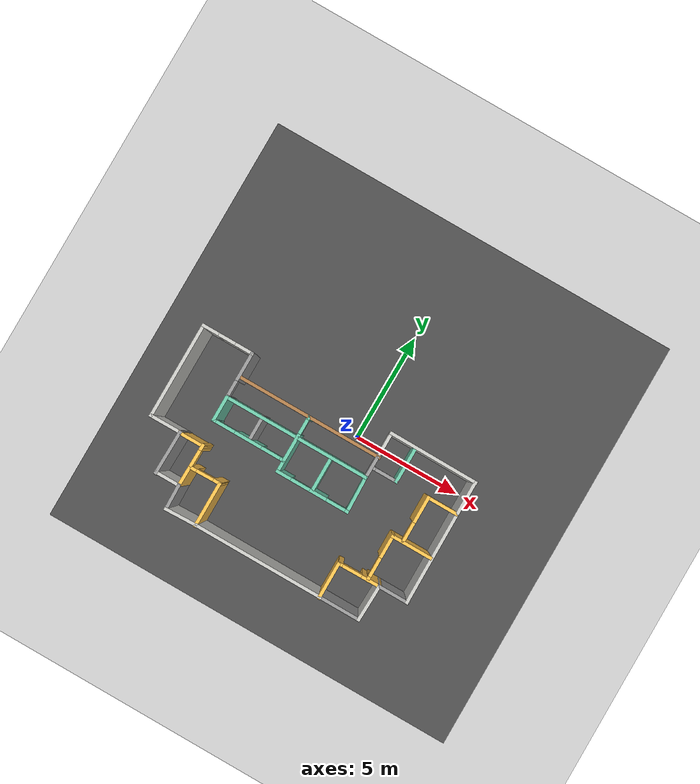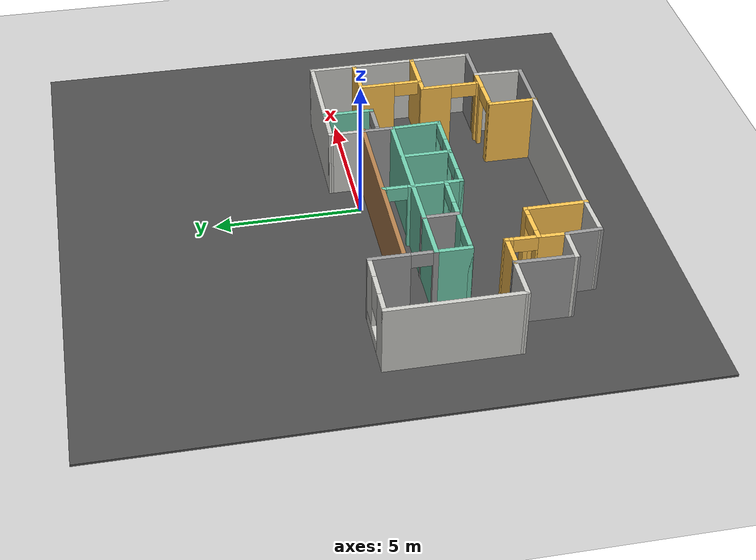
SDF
<sdf version="1.6">
 <world name="default">
  <model name="ground_plane">
   <static>1</static>
   <link name="link">
    <collision name="collision">
     <geometry><plane><normal>0 0 1</normal><size>100 100</size></plane></geometry>
     <surface>
      <contact><collide_bitmask>65535</collide_bitmask></contact>
      <friction><ode><mu>100</mu><mu2>50</mu2></ode></friction>
     </surface>
    </collision>
    <visual name="visual">
     <cast_shadows>0</cast_shadows>
     <geometry><plane><normal>0 0 1</normal><size>100 100</size></plane></geometry>
     <material>
      <script><uri>file://media/materials/scripts/gazebo.material</uri><name>Gazebo/Grey</name></script>
     </material>
    </visual>
   </link>
  </model>
  <model name="building">
   <pose>-1.31872 -2.90365 0 0 -0 0</pose>
   <link name="Wall_14">
    <collision name="Wall_14_Collision">
     <geometry><box><size>6.75 0.15 2.5</size></box></geometry>
     <pose>0 0 1.25 0 -0 0</pose>
    </collision>
    <visual name="Wall_14_Visual">
     <pose>0 0 1.25 0 -0 0</pose>
     <geometry><box><size>6.75 0.15 2.5</size></box></geometry>
     <material>
      <script><uri>file://media/materials/scripts/gazebo.material</uri><name>Gazebo/Wood</name></script>
      <ambient>1 1 1 1</ambient>
     </material>
     <meta><layer>0</layer></meta>
    </visual>
    <pose>-0.771279 2.58365 0 0 -0 3.14159</pose>
   </link>
   <link name="Wall_31">
    <collision name="Wall_31_Collision">
     <geometry><box><size>1.25 0.15 2.5</size></box></geometry>
     <pose>0 0 1.25 0 -0 0</pose>
    </collision>
    <visual name="Wall_31_Visual">
     <pose>0 0 1.25 0 -0 0</pose>
     <geometry><box><size>1.25 0.15 2.5</size></box></geometry>
     <material>
      <script><uri>file://media/materials/scripts/gazebo.material</uri><name>Gazebo/Grey</name></script>
      <ambient>1 0.764706 0.305882 1</ambient>
     </material>
     <meta><layer>0</layer></meta>
    </visual>
    <pose>-4.61808 -0.688752 0 0 -0 0</pose>
   </link>
   <link name="Wall_32">
    <pose>-4.08498 -1.64215 0 0 0 -1.58804</pose>
    <visual name="Wall_32_Visual_0">
     <pose>-0.900343 0 1.25 0 -0 0</pose>
     <geometry><box><size>0.309609 0.15 2.5</size></box></geometry>
     <material>
      <script><uri>file://media/materials/scripts/gazebo.material</uri><name>Gazebo/Grey</name></script>
      <ambient>1 0.764706 0.305882 1</ambient>
     </material>
     <meta><layer>0</layer></meta>
    </visual>
    <collision name="Wall_32_Collision_0">
     <geometry><box><size>0.309609 0.15 2.5</size></box></geometry>
     <pose>-0.900343 0 1.25 0 -0 0</pose>
    </collision>
    <visual name="Wall_32_Visual_1">
     <pose>0.554805 0 1.25 0 -0 0</pose>
     <geometry><box><size>1.00069 0.15 2.5</size></box></geometry>
     <material>
      <script><uri>file://media/materials/scripts/gazebo.material</uri><name>Gazebo/Grey</name></script>
      <ambient>1 0.764706 0.305882 1</ambient>
     </material>
     <meta><layer>0</layer></meta>
    </visual>
    <collision name="Wall_32_Collision_1">
     <geometry><box><size>1.00069 0.15 2.5</size></box></geometry>
     <pose>0.554805 0 1.25 0 -0 0</pose>
    </collision>
    <visual name="Wall_32_Visual_2">
     <pose>-0.345538 0 2.25 0 -0 0</pose>
     <geometry><box><size>0.8 0.15 0.5</size></box></geometry>
     <material>
      <script><uri>file://media/materials/scripts/gazebo.material</uri><name>Gazebo/Grey</name></script>
      <ambient>1 0.764706 0.305882 1</ambient>
     </material>
     <meta><layer>0</layer></meta>
    </visual>
    <collision name="Wall_32_Collision_2">
     <geometry><box><size>0.8 0.15 0.5</size></box></geometry>
     <pose>-0.345538 0 2.25 0 -0 0</pose>
    </collision>
   </link>
   <link name="Wall_34">
    <pose>-3.36907 -1.69258 0 0 -0 0.018781</pose>
    <visual name="Wall_34_Visual_0">
     <pose>-0.59641 0 1.25 0 -0 0</pose>
     <geometry><box><size>0.366972 0.15 2.5</size></box></geometry>
     <material>
      <script><uri>file://media/materials/scripts/gazebo.material</uri><name>Gazebo/Grey</name></script>
      <ambient>1 0.764706 0.305882 1</ambient>
     </material>
     <meta><layer>0</layer></meta>
    </visual>
    <collision name="Wall_34_Collision_0">
     <geometry><box><size>0.366972 0.15 2.5</size></box></geometry>
     <pose>-0.59641 0 1.25 0 -0 0</pose>
    </collision>
    <visual name="Wall_34_Visual_1">
     <pose>0.583486 0 1.25 0 -0 0</pose>
     <geometry><box><size>0.39282 0.15 2.5</size></box></geometry>
     <material>
      <script><uri>file://media/materials/scripts/gazebo.material</uri><name>Gazebo/Grey</name></script>
      <ambient>1 0.764706 0.305882 1</ambient>
     </material>
     <meta><layer>0</layer></meta>
    </visual>
    <collision name="Wall_34_Collision_1">
     <geometry><box><size>0.39282 0.15 2.5</size></box></geometry>
     <pose>0.583486 0 1.25 0 -0 0</pose>
    </collision>
    <visual name="Wall_34_Visual_2">
     <pose>-0.012924 0 2.25 0 -0 0</pose>
     <geometry><box><size>0.8 0.15 0.5</size></box></geometry>
     <material>
      <script><uri>file://media/materials/scripts/gazebo.material</uri><name>Gazebo/Grey</name></script>
      <ambient>1 0.764706 0.305882 1</ambient>
     </material>
     <meta><layer>0</layer></meta>
    </visual>
    <collision name="Wall_34_Collision_2">
     <geometry><box><size>0.8 0.15 0.5</size></box></geometry>
     <pose>-0.012924 0 2.25 0 -0 0</pose>
    </collision>
   </link>
   <link name="Wall_36">
    <collision name="Wall_36_Collision">
     <geometry><box><size>2.13879 0.15 2.5</size></box></geometry>
     <pose>0 0 1.25 0 -0 0</pose>
    </collision>
    <visual name="Wall_36_Visual">
     <pose>0 0 1.25 0 -0 0</pose>
     <geometry><box><size>2.13879 0.15 2.5</size></box></geometry>
     <material>
      <script><uri>file://media/materials/scripts/gazebo.material</uri><name>Gazebo/Grey</name></script>
      <ambient>1 0.764706 0.305882 1</ambient>
     </material>
     <meta><layer>0</layer></meta>
    </visual>
    <pose>-2.66467 -2.70035 0 0 0 -1.5708</pose>
   </link>
   <link name="Wall_37">
    <collision name="Wall_37_Collision">
     <geometry><box><size>1.56095 0.15 2.5</size></box></geometry>
     <pose>0 0 1.25 0 -0 0</pose>
    </collision>
    <visual name="Wall_37_Visual">
     <pose>0 0 1.25 0 -0 0</pose>
     <geometry><box><size>1.56095 0.15 2.5</size></box></geometry>
     <material>
      <script><uri>file://media/materials/scripts/gazebo.material</uri><name>Gazebo/CeilingTiled</name></script>
      <ambient>1 1 1 1</ambient>
     </material>
     <meta><layer>0</layer></meta>
    </visual>
    <pose>-3.36998 -3.69245 0 0 0 -3.10715</pose>
   </link>
   <link name="Wall_38">
    <collision name="Wall_38_Collision">
     <geometry><box><size>1.24492 0.15 2.5</size></box></geometry>
     <pose>0 0 1.25 0 -0 0</pose>
    </collision>
    <visual name="Wall_38_Visual">
     <pose>0 0 1.25 0 -0 0</pose>
     <geometry><box><size>1.24492 0.15 2.5</size></box></geometry>
     <material>
      <script><uri>file://media/materials/scripts/gazebo.material</uri><name>Gazebo/Grey</name></script>
      <ambient>1 1 1 1</ambient>
     </material>
     <meta><layer>0</layer></meta>
    </visual>
    <pose>-4.08858 -3.16945 0 0 -0 1.59509</pose>
   </link>
   <link name="Wall_4">
    <collision name="Wall_4_Collision">
     <geometry><box><size>1.55321 0.15 2.5</size></box></geometry>
     <pose>0 0 1.25 0 -0 0</pose>
    </collision>
    <visual name="Wall_4_Visual">
     <pose>0 0 1.25 0 -0 0</pose>
     <geometry><box><size>1.55321 0.15 2.5</size></box></geometry>
     <material>
      <script><uri>file://media/materials/scripts/gazebo.material</uri><name>Gazebo/CeilingTiled</name></script>
      <ambient>1 1 1 1</ambient>
     </material>
     <meta><layer>0</layer></meta>
    </visual>
    <pose>-5.86968 -0.664749 0 0 -0 0.003702</pose>
   </link>
   <link name="Wall_40">
    <collision name="Wall_40_Collision">
     <geometry><box><size>6.13374 0.15 2.5</size></box></geometry>
     <pose>0 0 1.25 0 -0 0</pose>
    </collision>
    <visual name="Wall_40_Visual">
     <pose>0 0 1.25 0 -0 0</pose>
     <geometry><box><size>6.13374 0.15 2.5</size></box></geometry>
     <material>
      <script><uri>file://media/materials/scripts/gazebo.material</uri><name>Gazebo/CeilingTiled</name></script>
      <ambient>1 1 1 1</ambient>
     </material>
     <meta><layer>0</layer></meta>
    </visual>
    <pose>0.32693 -3.66815 0 0 -0 0</pose>
   </link>
   <link name="Wall_41">
    <collision name="Wall_41_Collision">
     <geometry><box><size>1.75 0.15 2.5</size></box></geometry>
     <pose>0 0 1.25 0 -0 0</pose>
    </collision>
    <visual name="Wall_41_Visual">
     <pose>0 0 1.25 0 -0 0</pose>
     <geometry><box><size>1.75 0.15 2.5</size></box></geometry>
     <material>
      <script><uri>file://media/materials/scripts/gazebo.material</uri><name>Gazebo/Grey</name></script>
      <ambient>1 0.764706 0.305882 1</ambient>
     </material>
     <meta><layer>0</layer></meta>
    </visual>
    <pose>3.29194 -2.89475 0 0 -0 1.5708</pose>
   </link>
   <link name="Wall_43">
    <pose>4.27005 -2.05718 0 0 -0 0.011525</pose>
    <visual name="Wall_43_Visual_0">
     <pose>-0.911062 0 1.25 0 -0 0</pose>
     <geometry><box><size>0.231024 0.15 2.5</size></box></geometry>
     <material>
      <script><uri>file://media/materials/scripts/gazebo.material</uri><name>Gazebo/Grey</name></script>
      <ambient>1 0.764706 0.305882 1</ambient>
     </material>
     <meta><layer>0</layer></meta>
    </visual>
    <collision name="Wall_43_Collision_0">
     <geometry><box><size>0.231024 0.15 2.5</size></box></geometry>
     <pose>-0.911062 0 1.25 0 -0 0</pose>
    </collision>
    <visual name="Wall_43_Visual_1">
     <pose>0.565512 0 1.25 0 -0 0</pose>
     <geometry><box><size>0.922123 0.15 2.5</size></box></geometry>
     <material>
      <script><uri>file://media/materials/scripts/gazebo.material</uri><name>Gazebo/Grey</name></script>
      <ambient>1 0.764706 0.305882 1</ambient>
     </material>
     <meta><layer>0</layer></meta>
    </visual>
    <collision name="Wall_43_Collision_1">
     <geometry><box><size>0.922123 0.15 2.5</size></box></geometry>
     <pose>0.565512 0 1.25 0 -0 0</pose>
    </collision>
    <visual name="Wall_43_Visual_2">
     <pose>-0.34555 0 2.25 0 -0 0</pose>
     <geometry><box><size>0.9 0.15 0.5</size></box></geometry>
     <material>
      <script><uri>file://media/materials/scripts/gazebo.material</uri><name>Gazebo/Grey</name></script>
      <ambient>1 0.764706 0.305882 1</ambient>
     </material>
     <meta><layer>0</layer></meta>
    </visual>
    <collision name="Wall_43_Collision_2">
     <geometry><box><size>0.9 0.15 0.5</size></box></geometry>
     <pose>-0.34555 0 2.25 0 -0 0</pose>
    </collision>
   </link>
   <link name="Wall_44">
    <collision name="Wall_44_Collision">
     <geometry><box><size>1.7728 0.15 2.5</size></box></geometry>
     <pose>0 0 1.25 0 -0 0</pose>
    </collision>
    <visual name="Wall_44_Visual">
     <pose>0 0 1.25 0 -0 0</pose>
     <geometry><box><size>1.7728 0.15 2.5</size></box></geometry>
     <material>
      <script><uri>file://media/materials/scripts/gazebo.material</uri><name>Gazebo/CeilingTiled</name></script>
      <ambient>1 1 1 1</ambient>
     </material>
     <meta><layer>0</layer></meta>
    </visual>
    <pose>5.19505 -2.85718 0 0 0 -1.60347</pose>
   </link>
   <link name="Wall_45">
    <collision name="Wall_45_Collision">
     <geometry><box><size>2 0.15 2.5</size></box></geometry>
     <pose>0 0 1.25 0 -0 0</pose>
    </collision>
    <visual name="Wall_45_Visual">
     <pose>0 0 1.25 0 -0 0</pose>
     <geometry><box><size>2 0.15 2.5</size></box></geometry>
     <material>
      <script><uri>file://media/materials/scripts/gazebo.material</uri><name>Gazebo/Grey</name></script>
      <ambient>1 1 1 1</ambient>
     </material>
     <meta><layer>0</layer></meta>
    </visual>
    <pose>4.24353 -3.66815 0 0 -0 3.14159</pose>
   </link>
   <link name="Wall_47">
    <collision name="Wall_47_Collision">
     <geometry><box><size>1.5 0.15 2.5</size></box></geometry>
     <pose>0 0 1.25 0 -0 0</pose>
    </collision>
    <visual name="Wall_47_Visual">
     <pose>0 0 1.25 0 -0 0</pose>
     <geometry><box><size>1.5 0.15 2.5</size></box></geometry>
     <material>
      <script><uri>file://media/materials/scripts/gazebo.material</uri><name>Gazebo/Grey</name></script>
      <ambient>1 1 1 1</ambient>
     </material>
     <meta><layer>0</layer></meta>
    </visual>
    <pose>5.89656 -2.04621 0 0 -0 0</pose>
   </link>
   <link name="Wall_49">
    <collision name="Wall_49_Collision">
     <geometry><box><size>5.88847 0.15 2.5</size></box></geometry>
     <pose>0 0 1.25 0 -0 0</pose>
    </collision>
    <visual name="Wall_49_Visual">
     <pose>0 0 1.25 0 -0 0</pose>
     <geometry><box><size>5.88847 0.15 2.5</size></box></geometry>
     <material>
      <script><uri>file://media/materials/scripts/gazebo.material</uri><name>Gazebo/CeilingTiled</name></script>
      <ambient>1 1 1 1</ambient>
     </material>
     <meta><layer>0</layer></meta>
    </visual>
    <pose>6.53166 0.822991 0 0 -0 1.57543</pose>
   </link>
   <link name="Wall_5">
    <collision name="Wall_5_Collision">
     <geometry><box><size>2.11029 0.15 2.5</size></box></geometry>
     <pose>0 0 1.25 0 -0 0</pose>
    </collision>
    <visual name="Wall_5_Visual">
     <pose>0 0 1.25 0 -0 0</pose>
     <geometry><box><size>2.11029 0.15 2.5</size></box></geometry>
     <material>
      <script><uri>file://media/materials/scripts/gazebo.material</uri><name>Gazebo/Grey</name></script>
      <ambient>1 1 1 1</ambient>
     </material>
     <meta><layer>0</layer></meta>
    </visual>
    <pose>-5.18498 -1.64215 0 0 0 -1.58804</pose>
   </link>
   <link name="Wall_50">
    <collision name="Wall_50_Collision">
     <geometry><box><size>4.2185 0.15 2.5</size></box></geometry>
     <pose>0 0 1.25 0 -0 0</pose>
    </collision>
    <visual name="Wall_50_Visual">
     <pose>0 0 1.25 0 -0 0</pose>
     <geometry><box><size>4.2185 0.15 2.5</size></box></geometry>
     <material>
      <script><uri>file://media/materials/scripts/gazebo.material</uri><name>Gazebo/CeilingTiled</name></script>
      <ambient>1 1 1 1</ambient>
     </material>
     <meta><layer>0</layer></meta>
    </visual>
    <pose>4.51075 3.70549 0 0 -0 3.13505</pose>
   </link>
   <link name="Wall_51">
    <collision name="Wall_51_Collision">
     <geometry><box><size>1.25 0.15 2.5</size></box></geometry>
     <pose>0 0 1.25 0 -0 0</pose>
    </collision>
    <visual name="Wall_51_Visual">
     <pose>0 0 1.25 0 -0 0</pose>
     <geometry><box><size>1.25 0.15 2.5</size></box></geometry>
     <material>
      <script><uri>file://media/materials/scripts/gazebo.material</uri><name>Gazebo/CeilingTiled</name></script>
      <ambient>1 1 1 1</ambient>
     </material>
     <meta><layer>0</layer></meta>
    </visual>
    <pose>2.47654 3.16879 0 0 0 -1.5708</pose>
   </link>
   <link name="Wall_53">
    <collision name="Wall_53_Collision">
     <geometry><box><size>4.5 0.15 2.5</size></box></geometry>
     <pose>0 0 1.25 0 -0 0</pose>
    </collision>
    <visual name="Wall_53_Visual">
     <pose>0 0 1.25 0 -0 0</pose>
     <geometry><box><size>4.5 0.15 2.5</size></box></geometry>
     <material>
      <script><uri>file://media/materials/scripts/gazebo.material</uri><name>Gazebo/CeilingTiled</name></script>
      <ambient>1 1 1 1</ambient>
     </material>
     <meta><layer>0</layer></meta>
    </visual>
    <pose>-6.57128 1.50765 0 0 -0 1.5708</pose>
   </link>
   <link name="Wall_54">
    <pose>-5.39628 3.68265 0 0 -0 0</pose>
    <visual name="Wall_54_Visual_0">
     <pose>-0.846065 0 1.25 0 -0 0</pose>
     <geometry><box><size>0.807871 0.15 2.5</size></box></geometry>
     <material>
      <script><uri>file://media/materials/scripts/gazebo.material</uri><name>Gazebo/CeilingTiled</name></script>
      <ambient>1 1 1 1</ambient>
     </material>
     <meta><layer>0</layer></meta>
    </visual>
    <collision name="Wall_54_Collision_0">
     <geometry><box><size>0.807871 0.15 2.5</size></box></geometry>
     <pose>-0.846065 0 1.25 0 -0 0</pose>
    </collision>
    <visual name="Wall_54_Visual_1">
     <pose>0.403935 0 0.25 0 -0 0</pose>
     <geometry><box><size>1.69213 0.15 0.5</size></box></geometry>
     <material>
      <script><uri>file://media/materials/scripts/gazebo.material</uri><name>Gazebo/CeilingTiled</name></script>
      <ambient>1 1 1 1</ambient>
     </material>
     <meta><layer>0</layer></meta>
    </visual>
    <collision name="Wall_54_Collision_1">
     <geometry><box><size>1.69213 0.15 0.5</size></box></geometry>
     <pose>0.403935 0 0.25 0 -0 0</pose>
    </collision>
    <visual name="Wall_54_Visual_2">
     <pose>0.803935 0 1.5 0 -0 0</pose>
     <geometry><box><size>0.892129 0.15 2</size></box></geometry>
     <material>
      <script><uri>file://media/materials/scripts/gazebo.material</uri><name>Gazebo/CeilingTiled</name></script>
      <ambient>1 1 1 1</ambient>
     </material>
     <meta><layer>0</layer></meta>
    </visual>
    <collision name="Wall_54_Collision_2">
     <geometry><box><size>0.892129 0.15 2</size></box></geometry>
     <pose>0.803935 0 1.5 0 -0 0</pose>
    </collision>
    <visual name="Wall_54_Visual_3">
     <pose>-0.042129 0 1.9 0 -0 0</pose>
     <geometry><box><size>0.8 0.15 1.2</size></box></geometry>
     <material>
      <script><uri>file://media/materials/scripts/gazebo.material</uri><name>Gazebo/CeilingTiled</name></script>
      <ambient>1 1 1 1</ambient>
     </material>
     <meta><layer>0</layer></meta>
    </visual>
    <collision name="Wall_54_Collision_3">
     <geometry><box><size>0.8 0.15 1.2</size></box></geometry>
     <pose>-0.042129 0 1.9 0 -0 0</pose>
    </collision>
   </link>
   <link name="Wall_56">
    <pose>-4.22128 2.63265 0 0 0 -1.5708</pose>
    <visual name="Wall_56_Visual_0">
     <pose>-0.437256 0 1.25 0 -0 0</pose>
     <geometry><box><size>1.37549 0.15 2.5</size></box></geometry>
     <material>
      <script><uri>file://media/materials/scripts/gazebo.material</uri><name>Gazebo/Grey</name></script>
      <ambient>1 1 1 1</ambient>
     </material>
     <meta><layer>0</layer></meta>
    </visual>
    <collision name="Wall_56_Collision_0">
     <geometry><box><size>1.37549 0.15 2.5</size></box></geometry>
     <pose>-0.437256 0 1.25 0 -0 0</pose>
    </collision>
    <visual name="Wall_56_Visual_1">
     <pose>1.03774 0 1.25 0 -0 0</pose>
     <geometry><box><size>0.174512 0.15 2.5</size></box></geometry>
     <material>
      <script><uri>file://media/materials/scripts/gazebo.material</uri><name>Gazebo/Grey</name></script>
      <ambient>1 1 1 1</ambient>
     </material>
     <meta><layer>0</layer></meta>
    </visual>
    <collision name="Wall_56_Collision_1">
     <geometry><box><size>0.174512 0.15 2.5</size></box></geometry>
     <pose>1.03774 0 1.25 0 -0 0</pose>
    </collision>
    <visual name="Wall_56_Visual_2">
     <pose>0.600488 0 2.25 0 -0 0</pose>
     <geometry><box><size>0.7 0.15 0.5</size></box></geometry>
     <material>
      <script><uri>file://media/materials/scripts/gazebo.material</uri><name>Gazebo/Grey</name></script>
      <ambient>1 1 1 1</ambient>
     </material>
     <meta><layer>0</layer></meta>
    </visual>
    <collision name="Wall_56_Collision_2">
     <geometry><box><size>0.7 0.15 0.5</size></box></geometry>
     <pose>0.600488 0 2.25 0 -0 0</pose>
    </collision>
   </link>
   <link name="Wall_57">
    <collision name="Wall_57_Collision">
     <geometry><box><size>6.84 0.15 2.5</size></box></geometry>
     <pose>0 0 1.25 0 -0 0</pose>
    </collision>
    <visual name="Wall_57_Visual">
     <pose>0 0 1.25 0 -0 0</pose>
     <geometry><box><size>6.84 0.15 2.5</size></box></geometry>
     <material>
      <script><uri>file://media/materials/scripts/gazebo.material</uri><name>Gazebo/Grey</name></script>
      <ambient>0.435294 0.796078 0.67451 1</ambient>
     </material>
     <meta><layer>0</layer></meta>
    </visual>
    <pose>-0.876279 1.58265 0 0 -0 0</pose>
   </link>
   <link name="Wall_58">
    <collision name="Wall_58_Collision">
     <geometry><box><size>1.18617 0.15 2.5</size></box></geometry>
     <pose>0 0 1.25 0 -0 0</pose>
    </collision>
    <visual name="Wall_58_Visual">
     <pose>0 0 1.25 0 -0 0</pose>
     <geometry><box><size>1.18617 0.15 2.5</size></box></geometry>
     <material>
      <script><uri>file://media/materials/scripts/gazebo.material</uri><name>Gazebo/Grey</name></script>
      <ambient>1 1 1 1</ambient>
     </material>
     <meta><layer>0</layer></meta>
    </visual>
    <pose>2.47263 2.10072 0 0 -0 1.56325</pose>
   </link>
   <link name="Wall_6">
    <collision name="Wall_6_Collision">
     <geometry><box><size>1.25 0.15 2.5</size></box></geometry>
     <pose>0 0 1.25 0 -0 0</pose>
    </collision>
    <visual name="Wall_6_Visual">
     <pose>0 0 1.25 0 -0 0</pose>
     <geometry><box><size>1.25 0.15 2.5</size></box></geometry>
     <material>
      <script><uri>file://media/materials/scripts/gazebo.material</uri><name>Gazebo/CeilingTiled</name></script>
      <ambient>1 1 1 1</ambient>
     </material>
     <meta><layer>0</layer></meta>
    </visual>
    <pose>-4.65188 -2.59556 0 0 -0 0</pose>
   </link>
   <link name="Wall_60">
    <pose>-0.836574 1.26417 0 0 0 -1.5708</pose>
    <visual name="Wall_60_Visual_0">
     <pose>-1.2864 0 1.25 0 -0 0</pose>
     <geometry><box><size>0.177203 0.15 2.5</size></box></geometry>
     <material>
      <script><uri>file://media/materials/scripts/gazebo.material</uri><name>Gazebo/Grey</name></script>
      <ambient>0.435294 0.796078 0.67451 1</ambient>
     </material>
     <meta><layer>0</layer></meta>
    </visual>
    <collision name="Wall_60_Collision_0">
     <geometry><box><size>0.177203 0.15 2.5</size></box></geometry>
     <pose>-1.2864 0 1.25 0 -0 0</pose>
    </collision>
    <visual name="Wall_60_Visual_1">
     <pose>0.438602 0 1.25 0 -0 0</pose>
     <geometry><box><size>1.8728 0.15 2.5</size></box></geometry>
     <material>
      <script><uri>file://media/materials/scripts/gazebo.material</uri><name>Gazebo/Grey</name></script>
      <ambient>0.435294 0.796078 0.67451 1</ambient>
     </material>
     <meta><layer>0</layer></meta>
    </visual>
    <collision name="Wall_60_Collision_1">
     <geometry><box><size>1.8728 0.15 2.5</size></box></geometry>
     <pose>0.438602 0 1.25 0 -0 0</pose>
    </collision>
    <visual name="Wall_60_Visual_2">
     <pose>-0.847797 0 2.25 0 -0 0</pose>
     <geometry><box><size>0.7 0.15 0.5</size></box></geometry>
     <material>
      <script><uri>file://media/materials/scripts/gazebo.material</uri><name>Gazebo/Grey</name></script>
      <ambient>0.435294 0.796078 0.67451 1</ambient>
     </material>
     <meta><layer>0</layer></meta>
    </visual>
    <collision name="Wall_60_Collision_2">
     <geometry><box><size>0.7 0.15 0.5</size></box></geometry>
     <pose>-0.847797 0 2.25 0 -0 0</pose>
    </collision>
   </link>
   <link name="Wall_61">
    <pose>0.838426 -0.035831 0 0 -0 0</pose>
    <visual name="Wall_61_Visual_0">
     <pose>-1.3922 0 1.25 0 -0 0</pose>
     <geometry><box><size>0.715608 0.15 2.5</size></box></geometry>
     <material>
      <script><uri>file://media/materials/scripts/gazebo.material</uri><name>Gazebo/Grey</name></script>
      <ambient>0.435294 0.796078 0.67451 1</ambient>
     </material>
     <meta><layer>0</layer></meta>
    </visual>
    <collision name="Wall_61_Collision_0">
     <geometry><box><size>0.715608 0.15 2.5</size></box></geometry>
     <pose>-1.3922 0 1.25 0 -0 0</pose>
    </collision>
    <visual name="Wall_61_Visual_1">
     <pose>0.266815 0 1.25 0 -0 0</pose>
     <geometry><box><size>0.802413 0.15 2.5</size></box></geometry>
     <material>
      <script><uri>file://media/materials/scripts/gazebo.material</uri><name>Gazebo/Grey</name></script>
      <ambient>0.435294 0.796078 0.67451 1</ambient>
     </material>
     <meta><layer>0</layer></meta>
    </visual>
    <collision name="Wall_61_Collision_1">
     <geometry><box><size>0.802413 0.15 2.5</size></box></geometry>
     <pose>0.266815 0 1.25 0 -0 0</pose>
    </collision>
    <visual name="Wall_61_Visual_2">
     <pose>1.65901 0 1.25 0 -0 0</pose>
     <geometry><box><size>0.181979 0.15 2.5</size></box></geometry>
     <material>
      <script><uri>file://media/materials/scripts/gazebo.material</uri><name>Gazebo/Grey</name></script>
      <ambient>0.435294 0.796078 0.67451 1</ambient>
     </material>
     <meta><layer>0</layer></meta>
    </visual>
    <collision name="Wall_61_Collision_2">
     <geometry><box><size>0.181979 0.15 2.5</size></box></geometry>
     <pose>1.65901 0 1.25 0 -0 0</pose>
    </collision>
    <visual name="Wall_61_Visual_3">
     <pose>-0.584392 0 2.25 0 -0 0</pose>
     <geometry><box><size>0.9 0.15 0.5</size></box></geometry>
     <material>
      <script><uri>file://media/materials/scripts/gazebo.material</uri><name>Gazebo/Grey</name></script>
      <ambient>0.435294 0.796078 0.67451 1</ambient>
     </material>
     <meta><layer>0</layer></meta>
    </visual>
    <collision name="Wall_61_Collision_3">
     <geometry><box><size>0.9 0.15 0.5</size></box></geometry>
     <pose>-0.584392 0 2.25 0 -0 0</pose>
    </collision>
    <visual name="Wall_61_Visual_4">
     <pose>1.11802 0 2.25 0 -0 0</pose>
     <geometry><box><size>0.9 0.15 0.5</size></box></geometry>
     <material>
      <script><uri>file://media/materials/scripts/gazebo.material</uri><name>Gazebo/Grey</name></script>
      <ambient>0.435294 0.796078 0.67451 1</ambient>
     </material>
     <meta><layer>0</layer></meta>
    </visual>
    <collision name="Wall_61_Collision_4">
     <geometry><box><size>0.9 0.15 0.5</size></box></geometry>
     <pose>1.11802 0 2.25 0 -0 0</pose>
    </collision>
   </link>
   <link name="Wall_62">
    <collision name="Wall_62_Collision">
     <geometry><box><size>1.7691 0.15 2.5</size></box></geometry>
     <pose>0 0 1.25 0 -0 0</pose>
    </collision>
    <visual name="Wall_62_Visual">
     <pose>0 0 1.25 0 -0 0</pose>
     <geometry><box><size>1.7691 0.15 2.5</size></box></geometry>
     <material>
      <script><uri>file://media/materials/scripts/gazebo.material</uri><name>Gazebo/Grey</name></script>
      <ambient>0.435294 0.796078 0.67451 1</ambient>
     </material>
     <meta><layer>0</layer></meta>
    </visual>
    <pose>2.49107 0.773411 0 0 -0 1.59841</pose>
   </link>
   <link name="Wall_64">
    <collision name="Wall_64_Collision">
     <geometry><box><size>1.75 0.15 2.5</size></box></geometry>
     <pose>0 0 1.25 0 -0 0</pose>
    </collision>
    <visual name="Wall_64_Visual">
     <pose>0 0 1.25 0 -0 0</pose>
     <geometry><box><size>1.75 0.15 2.5</size></box></geometry>
     <material>
      <script><uri>file://media/materials/scripts/gazebo.material</uri><name>Gazebo/Grey</name></script>
      <ambient>0.435294 0.796078 0.67451 1</ambient>
     </material>
     <meta><layer>0</layer></meta>
    </visual>
    <pose>0.812638 0.779962 0 0 0 -1.5708</pose>
   </link>
   <link name="Wall_66">
    <pose>4.66967 -1.01426 0 0 -0 1.5708</pose>
    <visual name="Wall_66_Visual_0">
     <pose>-1.0066 0 1.25 0 -0 0</pose>
     <geometry><box><size>0.236805 0.15 2.5</size></box></geometry>
     <material>
      <script><uri>file://media/materials/scripts/gazebo.material</uri><name>Gazebo/Grey</name></script>
      <ambient>1 0.764706 0.305882 1</ambient>
     </material>
     <meta><layer>0</layer></meta>
    </visual>
    <collision name="Wall_66_Collision_0">
     <geometry><box><size>0.236805 0.15 2.5</size></box></geometry>
     <pose>-1.0066 0 1.25 0 -0 0</pose>
    </collision>
    <visual name="Wall_66_Visual_1">
     <pose>0.568402 0 1.25 0 -0 0</pose>
     <geometry><box><size>1.11319 0.15 2.5</size></box></geometry>
     <material>
      <script><uri>file://media/materials/scripts/gazebo.material</uri><name>Gazebo/Grey</name></script>
      <ambient>1 0.764706 0.305882 1</ambient>
     </material>
     <meta><layer>0</layer></meta>
    </visual>
    <collision name="Wall_66_Collision_1">
     <geometry><box><size>1.11319 0.15 2.5</size></box></geometry>
     <pose>0.568402 0 1.25 0 -0 0</pose>
    </collision>
    <visual name="Wall_66_Visual_2">
     <pose>-0.438195 0 2.25 0 -0 0</pose>
     <geometry><box><size>0.9 0.15 0.5</size></box></geometry>
     <material>
      <script><uri>file://media/materials/scripts/gazebo.material</uri><name>Gazebo/Grey</name></script>
      <ambient>1 0.764706 0.305882 1</ambient>
     </material>
     <meta><layer>0</layer></meta>
    </visual>
    <collision name="Wall_66_Collision_2">
     <geometry><box><size>0.9 0.15 0.5</size></box></geometry>
     <pose>-0.438195 0 2.25 0 -0 0</pose>
    </collision>
   </link>
   <link name="Wall_67">
    <collision name="Wall_67_Collision">
     <geometry><box><size>2 0.15 2.5</size></box></geometry>
     <pose>0 0 1.25 0 -0 0</pose>
    </collision>
    <visual name="Wall_67_Visual">
     <pose>0 0 1.25 0 -0 0</pose>
     <geometry><box><size>2 0.15 2.5</size></box></geometry>
     <material>
      <script><uri>file://media/materials/scripts/gazebo.material</uri><name>Gazebo/Grey</name></script>
      <ambient>1 0.764706 0.305882 1</ambient>
     </material>
     <meta><layer>0</layer></meta>
    </visual>
    <pose>5.59467 0.035735 0 0 -0 0</pose>
   </link>
   <link name="Wall_69">
    <pose>5.14847 1.11375 0 0 -0 1.5708</pose>
    <visual name="Wall_69_Visual_0">
     <pose>-1.0864 0 1.25 0 -0 0</pose>
     <geometry><box><size>0.077203 0.15 2.5</size></box></geometry>
     <material>
      <script><uri>file://media/materials/scripts/gazebo.material</uri><name>Gazebo/Grey</name></script>
      <ambient>1 0.764706 0.305882 1</ambient>
     </material>
     <meta><layer>0</layer></meta>
    </visual>
    <collision name="Wall_69_Collision_0">
     <geometry><box><size>0.077203 0.15 2.5</size></box></geometry>
     <pose>-1.0864 0 1.25 0 -0 0</pose>
    </collision>
    <visual name="Wall_69_Visual_1">
     <pose>0.488602 0 1.25 0 -0 0</pose>
     <geometry><box><size>1.2728 0.15 2.5</size></box></geometry>
     <material>
      <script><uri>file://media/materials/scripts/gazebo.material</uri><name>Gazebo/Grey</name></script>
      <ambient>1 0.764706 0.305882 1</ambient>
     </material>
     <meta><layer>0</layer></meta>
    </visual>
    <collision name="Wall_69_Collision_1">
     <geometry><box><size>1.2728 0.15 2.5</size></box></geometry>
     <pose>0.488602 0 1.25 0 -0 0</pose>
    </collision>
    <visual name="Wall_69_Visual_2">
     <pose>-0.597797 0 2.25 0 -0 0</pose>
     <geometry><box><size>0.9 0.15 0.5</size></box></geometry>
     <material>
      <script><uri>file://media/materials/scripts/gazebo.material</uri><name>Gazebo/Grey</name></script>
      <ambient>1 0.764706 0.305882 1</ambient>
     </material>
     <meta><layer>0</layer></meta>
    </visual>
    <collision name="Wall_69_Collision_2">
     <geometry><box><size>0.9 0.15 0.5</size></box></geometry>
     <pose>-0.597797 0 2.25 0 -0 0</pose>
    </collision>
   </link>
   <link name="Wall_70">
    <collision name="Wall_70_Collision">
     <geometry><box><size>1.5 0.15 2.5</size></box></geometry>
     <pose>0 0 1.25 0 -0 0</pose>
    </collision>
    <visual name="Wall_70_Visual">
     <pose>0 0 1.25 0 -0 0</pose>
     <geometry><box><size>1.5 0.15 2.5</size></box></geometry>
     <material>
      <script><uri>file://media/materials/scripts/gazebo.material</uri><name>Gazebo/Grey</name></script>
      <ambient>1 0.764706 0.305882 1</ambient>
     </material>
     <meta><layer>0</layer></meta>
    </visual>
    <pose>5.82347 2.16375 0 0 -0 0</pose>
   </link>
   <link name="Wall_72">
    <collision name="Wall_72_Collision">
     <geometry><box><size>1.25 0.15 2.5</size></box></geometry>
     <pose>0 0 1.25 0 -0 0</pose>
    </collision>
    <visual name="Wall_72_Visual">
     <pose>0 0 1.25 0 -0 0</pose>
     <geometry><box><size>1.25 0.15 2.5</size></box></geometry>
     <material>
      <script><uri>file://media/materials/scripts/gazebo.material</uri><name>Gazebo/Grey</name></script>
      <ambient>0.435294 0.796078 0.67451 1</ambient>
     </material>
     <meta><layer>0</layer></meta>
    </visual>
    <pose>-4.22128 1.03265 0 0 0 -1.5708</pose>
   </link>
   <link name="Wall_73">
    <pose>-2.54628 0.482654 0 0 -0 0</pose>
    <visual name="Wall_73_Visual_0">
     <pose>-1.65496 0 1.25 0 -0 0</pose>
     <geometry><box><size>0.190084 0.15 2.5</size></box></geometry>
     <material>
      <script><uri>file://media/materials/scripts/gazebo.material</uri><name>Gazebo/Grey</name></script>
      <ambient>0.435294 0.796078 0.67451 1</ambient>
     </material>
     <meta><layer>0</layer></meta>
    </visual>
    <collision name="Wall_73_Collision_0">
     <geometry><box><size>0.190084 0.15 2.5</size></box></geometry>
     <pose>-1.65496 0 1.25 0 -0 0</pose>
    </collision>
    <visual name="Wall_73_Visual_1">
     <pose>-0.019308 0 1.25 0 -0 0</pose>
     <geometry><box><size>1.28122 0.15 2.5</size></box></geometry>
     <material>
      <script><uri>file://media/materials/scripts/gazebo.material</uri><name>Gazebo/Grey</name></script>
      <ambient>0.435294 0.796078 0.67451 1</ambient>
     </material>
     <meta><layer>0</layer></meta>
    </visual>
    <collision name="Wall_73_Collision_1">
     <geometry><box><size>1.28122 0.15 2.5</size></box></geometry>
     <pose>-0.019308 0 1.25 0 -0 0</pose>
    </collision>
    <visual name="Wall_73_Visual_2">
     <pose>1.63565 0 1.25 0 -0 0</pose>
     <geometry><box><size>0.228699 0.15 2.5</size></box></geometry>
     <material>
      <script><uri>file://media/materials/scripts/gazebo.material</uri><name>Gazebo/Grey</name></script>
      <ambient>0.435294 0.796078 0.67451 1</ambient>
     </material>
     <meta><layer>0</layer></meta>
    </visual>
    <collision name="Wall_73_Collision_2">
     <geometry><box><size>0.228699 0.15 2.5</size></box></geometry>
     <pose>1.63565 0 1.25 0 -0 0</pose>
    </collision>
    <visual name="Wall_73_Visual_3">
     <pose>-1.10992 0 2.25 0 -0 0</pose>
     <geometry><box><size>0.9 0.15 0.5</size></box></geometry>
     <material>
      <script><uri>file://media/materials/scripts/gazebo.material</uri><name>Gazebo/Grey</name></script>
      <ambient>0.435294 0.796078 0.67451 1</ambient>
     </material>
     <meta><layer>0</layer></meta>
    </visual>
    <collision name="Wall_73_Collision_3">
     <geometry><box><size>0.9 0.15 0.5</size></box></geometry>
     <pose>-1.10992 0 2.25 0 -0 0</pose>
    </collision>
    <visual name="Wall_73_Visual_4">
     <pose>1.0713 0 2.25 0 -0 0</pose>
     <geometry><box><size>0.9 0.15 0.5</size></box></geometry>
     <material>
      <script><uri>file://media/materials/scripts/gazebo.material</uri><name>Gazebo/Grey</name></script>
      <ambient>0.435294 0.796078 0.67451 1</ambient>
     </material>
     <meta><layer>0</layer></meta>
    </visual>
    <collision name="Wall_73_Collision_4">
     <geometry><box><size>0.9 0.15 0.5</size></box></geometry>
     <pose>1.0713 0 2.25 0 -0 0</pose>
    </collision>
   </link>
   <link name="Wall_75">
    <collision name="Wall_75_Collision">
     <geometry><box><size>1.25 0.15 2.5</size></box></geometry>
     <pose>0 0 1.25 0 -0 0</pose>
    </collision>
    <visual name="Wall_75_Visual">
     <pose>0 0 1.25 0 -0 0</pose>
     <geometry><box><size>1.25 0.15 2.5</size></box></geometry>
     <material>
      <script><uri>file://media/materials/scripts/gazebo.material</uri><name>Gazebo/Grey</name></script>
      <ambient>1 1 1 1</ambient>
     </material>
     <meta><layer>0</layer></meta>
    </visual>
    <pose>-2.51239 1.05656 0 0 0 -1.5708</pose>
   </link>
   <link name="Wall_77">
    <collision name="Wall_77_Collision">
     <geometry><box><size>1.75 0.15 2.5</size></box></geometry>
     <pose>0 0 1.25 0 -0 0</pose>
    </collision>
    <visual name="Wall_77_Visual">
     <pose>0 0 1.25 0 -0 0</pose>
     <geometry><box><size>1.75 0.15 2.5</size></box></geometry>
     <material>
      <script><uri>file://media/materials/scripts/gazebo.material</uri><name>Gazebo/Grey</name></script>
      <ambient>0.435294 0.796078 0.67451 1</ambient>
     </material>
     <meta><layer>0</layer></meta>
    </visual>
    <pose>3.65886 2.88138 0 0 0 -1.5708</pose>
   </link>
   <link name="Wall_78">
    <pose>3.10886 2.08138 0 0 -0 3.14159</pose>
    <visual name="Wall_78_Visual_0">
     <pose>-0.533198 0 1.25 0 -0 0</pose>
     <geometry><box><size>0.183604 0.15 2.5</size></box></geometry>
     <material>
      <script><uri>file://media/materials/scripts/gazebo.material</uri><name>Gazebo/Grey</name></script>
      <ambient>1 1 1 1</ambient>
     </material>
     <meta><layer>0</layer></meta>
    </visual>
    <collision name="Wall_78_Collision_0">
     <geometry><box><size>0.183604 0.15 2.5</size></box></geometry>
     <pose>-0.533198 0 1.25 0 -0 0</pose>
    </collision>
    <visual name="Wall_78_Visual_1">
     <pose>0.541802 0 1.25 0 -0 0</pose>
     <geometry><box><size>0.166396 0.15 2.5</size></box></geometry>
     <material>
      <script><uri>file://media/materials/scripts/gazebo.material</uri><name>Gazebo/Grey</name></script>
      <ambient>1 1 1 1</ambient>
     </material>
     <meta><layer>0</layer></meta>
    </visual>
    <collision name="Wall_78_Collision_1">
     <geometry><box><size>0.166396 0.15 2.5</size></box></geometry>
     <pose>0.541802 0 1.25 0 -0 0</pose>
    </collision>
    <visual name="Wall_78_Visual_2">
     <pose>0.008604 0 2.25 0 -0 0</pose>
     <geometry><box><size>0.9 0.15 0.5</size></box></geometry>
     <material>
      <script><uri>file://media/materials/scripts/gazebo.material</uri><name>Gazebo/Grey</name></script>
      <ambient>1 1 1 1</ambient>
     </material>
     <meta><layer>0</layer></meta>
    </visual>
    <collision name="Wall_78_Collision_2">
     <geometry><box><size>0.9 0.15 0.5</size></box></geometry>
     <pose>0.008604 0 2.25 0 -0 0</pose>
    </collision>
   </link>
   <static>1</static>
  </model>
  <model name="asphalt_plane">
   <static>1</static>
   <link name="link">
    <collision name="collision"><geometry><box><size>20 20 0.1</size></box></geometry></collision>
    <visual name="visual">
     <cast_shadows>0</cast_shadows>
     <geometry><box><size>20 20 0.1</size></box></geometry>
     <material>
      <script>
       <uri>model://asphalt_plane/materials/scripts</uri>
       <uri>model://asphalt_plane/materials/textures</uri>
       <name>vrc/asphalt</name>
      </script>
     </material>
    </visual>
   </link>
   <pose>-0.025239 0.258261 0 0 -0 0</pose>
  </model>
 </world>
</sdf>
